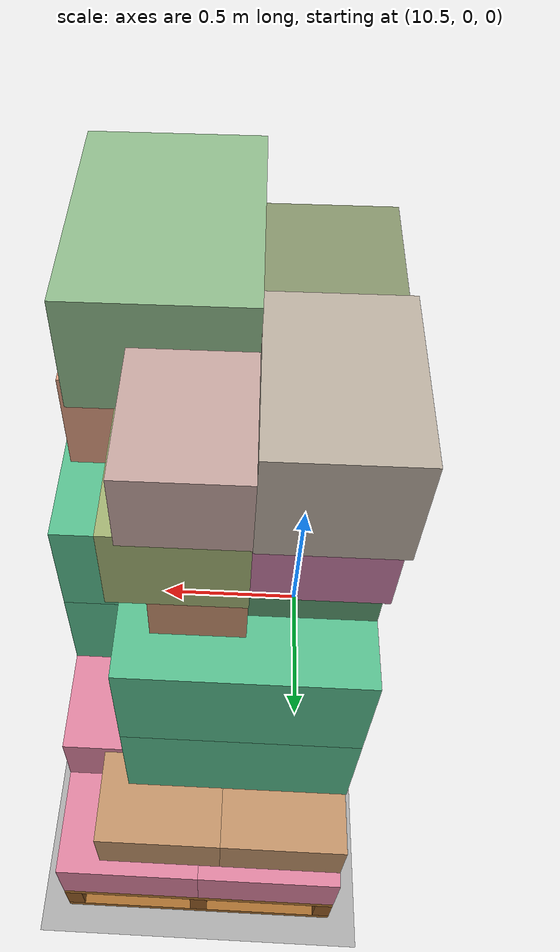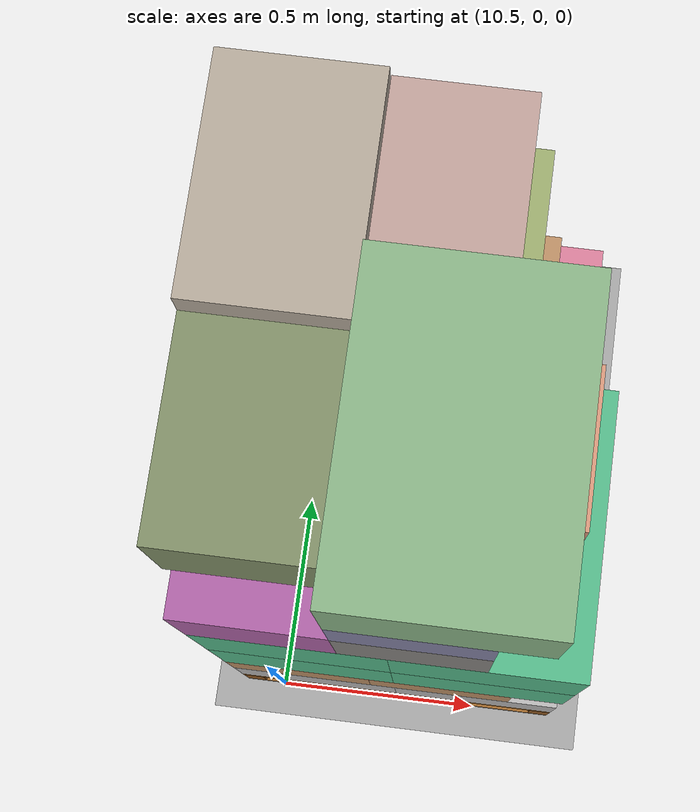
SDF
<sdf version="1.10">
 <world name="pallet_towers">
  <model name="ground_plane">
   <static>true</static>
   <link name="link">
    <collision name="collision">
     <geometry><plane><normal>0 0 1</normal><size>30 30</size></plane></geometry>
     <surface>
      <friction><ode><mu>0.55</mu><mu2>0.55</mu2></ode></friction>
      <bounce><restitution_coefficient>0</restitution_coefficient><threshold>100000</threshold></bounce>
      <contact><ode><kp>1000000</kp><kd>100</kd><max_vel>1</max_vel><min_depth>0.0005</min_depth></ode></contact>
     </surface>
    </collision>
    <visual name="visual">
     <geometry><plane><normal>0 0 1</normal><size>30 30</size></plane></geometry>
     <material><ambient>0.65 0.65 0.65 1</ambient><diffuse>0.65 0.65 0.65 1</diffuse></material>
    </visual>
   </link>
  </model>
  <model name="pallet_09_P09">
   <static>false</static>
   <pose>10.8 0.6 0.002 0 0 0</pose>
   <allow_auto_disable>false</allow_auto_disable>
   <link name="body">
    <inertial>
     <pose>0 0 0.072 0 0 0</pose>
     <mass>25</mass>
     <inertia>
      <ixx>3.07216082</ixx>
      <ixy>0</ixy>
      <ixz>0</ixz>
      <iyy>1.70896776</iyy>
      <iyz>0</iyz>
      <izz>4.63680694</izz>
     </inertia>
    </inertial>
    <collision name="bottom_deck_collision">
     <pose>0 0 0.011 0 0 0</pose>
     <geometry><box><size>0.8 1.2 0.022</size></box></geometry>
     <surface>
      <friction><ode><mu>0.55</mu><mu2>0.55</mu2></ode></friction>
      <bounce><restitution_coefficient>0</restitution_coefficient><threshold>100000</threshold></bounce>
      <contact><ode><kp>1000000</kp><kd>100</kd><max_vel>1</max_vel><min_depth>0.0005</min_depth></ode></contact>
     </surface>
    </collision>
    <visual name="bottom_deck_visual">
     <pose>0 0 0.011 0 0 0</pose>
     <geometry><box><size>0.8 1.2 0.022</size></box></geometry>
     <material>
      <ambient>0.46 0.28 0.10 1</ambient>
      <diffuse>0.64 0.42 0.18 1</diffuse>
      <specular>0.03 0.03 0.03 1</specular>
     </material>
    </visual>
    <collision name="left_stringer_collision">
     <pose>-0.375 0 0.072 0 0 0</pose>
     <geometry><box><size>0.05 1.2 0.1</size></box></geometry>
     <surface>
      <friction><ode><mu>0.55</mu><mu2>0.55</mu2></ode></friction>
      <bounce><restitution_coefficient>0</restitution_coefficient><threshold>100000</threshold></bounce>
      <contact><ode><kp>1000000</kp><kd>100</kd><max_vel>1</max_vel><min_depth>0.0005</min_depth></ode></contact>
     </surface>
    </collision>
    <visual name="left_stringer_visual">
     <pose>-0.375 0 0.072 0 0 0</pose>
     <geometry><box><size>0.05 1.2 0.1</size></box></geometry>
     <material>
      <ambient>0.42 0.25 0.09 1</ambient>
      <diffuse>0.58 0.36 0.14 1</diffuse>
      <specular>0.03 0.03 0.03 1</specular>
     </material>
    </visual>
    <collision name="centre_stringer_collision">
     <pose>0 0 0.072 0 0 0</pose>
     <geometry><box><size>0.05 1.2 0.1</size></box></geometry>
     <surface>
      <friction><ode><mu>0.55</mu><mu2>0.55</mu2></ode></friction>
      <bounce><restitution_coefficient>0</restitution_coefficient><threshold>100000</threshold></bounce>
      <contact><ode><kp>1000000</kp><kd>100</kd><max_vel>1</max_vel><min_depth>0.0005</min_depth></ode></contact>
     </surface>
    </collision>
    <visual name="centre_stringer_visual">
     <pose>0 0 0.072 0 0 0</pose>
     <geometry><box><size>0.05 1.2 0.1</size></box></geometry>
     <material>
      <ambient>0.42 0.25 0.09 1</ambient>
      <diffuse>0.58 0.36 0.14 1</diffuse>
      <specular>0.03 0.03 0.03 1</specular>
     </material>
    </visual>
    <collision name="right_stringer_collision">
     <pose>0.375 0 0.072 0 0 0</pose>
     <geometry><box><size>0.05 1.2 0.1</size></box></geometry>
     <surface>
      <friction><ode><mu>0.55</mu><mu2>0.55</mu2></ode></friction>
      <bounce><restitution_coefficient>0</restitution_coefficient><threshold>100000</threshold></bounce>
      <contact><ode><kp>1000000</kp><kd>100</kd><max_vel>1</max_vel><min_depth>0.0005</min_depth></ode></contact>
     </surface>
    </collision>
    <visual name="right_stringer_visual">
     <pose>0.375 0 0.072 0 0 0</pose>
     <geometry><box><size>0.05 1.2 0.1</size></box></geometry>
     <material>
      <ambient>0.42 0.25 0.09 1</ambient>
      <diffuse>0.58 0.36 0.14 1</diffuse>
      <specular>0.03 0.03 0.03 1</specular>
     </material>
    </visual>
    <collision name="top_deck_collision">
     <pose>0 0 0.133 0 0 0</pose>
     <geometry><box><size>0.8 1.2 0.022</size></box></geometry>
     <surface>
      <friction><ode><mu>0.55</mu><mu2>0.55</mu2></ode></friction>
      <bounce><restitution_coefficient>0</restitution_coefficient><threshold>100000</threshold></bounce>
      <contact><ode><kp>1000000</kp><kd>100</kd><max_vel>1</max_vel><min_depth>0.0005</min_depth></ode></contact>
     </surface>
    </collision>
    <visual name="top_deck_visual">
     <pose>0 0 0.133 0 0 0</pose>
     <geometry><box><size>0.8 1.2 0.022</size></box></geometry>
     <material>
      <ambient>0.50 0.31 0.11 1</ambient>
      <diffuse>0.70 0.47 0.20 1</diffuse>
      <specular>0.03 0.03 0.03 1</specular>
     </material>
    </visual>
   </link>
  </model>
  <model name="box_p09_0001_SOUP_003_SOUP">
   <static>false</static>
   <pose>10.6 0.15 0.241 0 0 0</pose>
   <link name="body">
    <inertial>
     <mass>12</mass>
     <inertia><ixx>0.1261</ixx><ixy>0</ixy><ixz>0</ixz><iyy>0.1961</iyy><iyz>0</iyz><izz>0.25</izz></inertia>
    </inertial>
    <collision name="collision">
     <geometry><box><size>0.4 0.3 0.19</size></box></geometry>
     <surface>
      <friction><ode><mu>0.55</mu><mu2>0.55</mu2></ode></friction>
      <bounce><restitution_coefficient>0</restitution_coefficient><threshold>100000</threshold></bounce>
      <contact><ode><kp>1000000</kp><kd>100</kd><max_vel>1</max_vel><min_depth>0.0005</min_depth></ode></contact>
     </surface>
    </collision>
    <visual name="visual">
     <geometry><box><size>0.4 0.3 0.19</size></box></geometry>
     <material>
      <ambient>0.721568627 0.717647059 0.717647059 1</ambient>
      <diffuse>0.721568627 0.717647059 0.717647059 1</diffuse>
      <specular>0.05 0.05 0.05 1</specular>
     </material>
    </visual>
   </link>
  </model>
  <model name="box_p09_0002_SOUP_004_SOUP">
   <static>false</static>
   <pose>11 0.15 0.241 0 0 0</pose>
   <link name="body">
    <inertial>
     <mass>12</mass>
     <inertia><ixx>0.1261</ixx><ixy>0</ixy><ixz>0</ixz><iyy>0.1961</iyy><iyz>0</iyz><izz>0.25</izz></inertia>
    </inertial>
    <collision name="collision">
     <geometry><box><size>0.4 0.3 0.19</size></box></geometry>
     <surface>
      <friction><ode><mu>0.55</mu><mu2>0.55</mu2></ode></friction>
      <bounce><restitution_coefficient>0</restitution_coefficient><threshold>100000</threshold></bounce>
      <contact><ode><kp>1000000</kp><kd>100</kd><max_vel>1</max_vel><min_depth>0.0005</min_depth></ode></contact>
     </surface>
    </collision>
    <visual name="visual">
     <geometry><box><size>0.4 0.3 0.19</size></box></geometry>
     <material>
      <ambient>0.721568627 0.717647059 0.717647059 1</ambient>
      <diffuse>0.721568627 0.717647059 0.717647059 1</diffuse>
      <specular>0.05 0.05 0.05 1</specular>
     </material>
    </visual>
   </link>
  </model>
  <model name="box_p09_0003_SOUP_005_SOUP">
   <static>false</static>
   <pose>10.6 0.45 0.241 0 0 0</pose>
   <link name="body">
    <inertial>
     <mass>12</mass>
     <inertia><ixx>0.1261</ixx><ixy>0</ixy><ixz>0</ixz><iyy>0.1961</iyy><iyz>0</iyz><izz>0.25</izz></inertia>
    </inertial>
    <collision name="collision">
     <geometry><box><size>0.4 0.3 0.19</size></box></geometry>
     <surface>
      <friction><ode><mu>0.55</mu><mu2>0.55</mu2></ode></friction>
      <bounce><restitution_coefficient>0</restitution_coefficient><threshold>100000</threshold></bounce>
      <contact><ode><kp>1000000</kp><kd>100</kd><max_vel>1</max_vel><min_depth>0.0005</min_depth></ode></contact>
     </surface>
    </collision>
    <visual name="visual">
     <geometry><box><size>0.4 0.3 0.19</size></box></geometry>
     <material>
      <ambient>0.721568627 0.717647059 0.717647059 1</ambient>
      <diffuse>0.721568627 0.717647059 0.717647059 1</diffuse>
      <specular>0.05 0.05 0.05 1</specular>
     </material>
    </visual>
   </link>
  </model>
  <model name="box_p09_0004_SOUP_006_SOUP">
   <static>false</static>
   <pose>11 0.45 0.241 0 0 0</pose>
   <link name="body">
    <inertial>
     <mass>12</mass>
     <inertia><ixx>0.1261</ixx><ixy>0</ixy><ixz>0</ixz><iyy>0.1961</iyy><iyz>0</iyz><izz>0.25</izz></inertia>
    </inertial>
    <collision name="collision">
     <geometry><box><size>0.4 0.3 0.19</size></box></geometry>
     <surface>
      <friction><ode><mu>0.55</mu><mu2>0.55</mu2></ode></friction>
      <bounce><restitution_coefficient>0</restitution_coefficient><threshold>100000</threshold></bounce>
      <contact><ode><kp>1000000</kp><kd>100</kd><max_vel>1</max_vel><min_depth>0.0005</min_depth></ode></contact>
     </surface>
    </collision>
    <visual name="visual">
     <geometry><box><size>0.4 0.3 0.19</size></box></geometry>
     <material>
      <ambient>0.721568627 0.717647059 0.717647059 1</ambient>
      <diffuse>0.721568627 0.717647059 0.717647059 1</diffuse>
      <specular>0.05 0.05 0.05 1</specular>
     </material>
    </visual>
   </link>
  </model>
  <model name="box_p09_0005_BEANS_001_BEANS">
   <static>false</static>
   <pose>10.6 0.75 0.236 0 0 0</pose>
   <link name="body">
    <inertial>
     <mass>11</mass>
     <inertia>
      <ixx>0.1122</ixx>
      <ixy>0</ixy>
      <ixz>0</ixz>
      <iyy>0.176366667</iyy>
      <iyz>0</iyz>
      <izz>0.229166667</izz>
     </inertia>
    </inertial>
    <collision name="collision">
     <geometry><box><size>0.4 0.3 0.18</size></box></geometry>
     <surface>
      <friction><ode><mu>0.55</mu><mu2>0.55</mu2></ode></friction>
      <bounce><restitution_coefficient>0</restitution_coefficient><threshold>100000</threshold></bounce>
      <contact><ode><kp>1000000</kp><kd>100</kd><max_vel>1</max_vel><min_depth>0.0005</min_depth></ode></contact>
     </surface>
    </collision>
    <visual name="visual">
     <geometry><box><size>0.4 0.3 0.18</size></box></geometry>
     <material>
      <ambient>0.847058824 0.498039216 0.607843137 1</ambient>
      <diffuse>0.847058824 0.498039216 0.607843137 1</diffuse>
      <specular>0.05 0.05 0.05 1</specular>
     </material>
    </visual>
   </link>
  </model>
  <model name="box_p09_0006_BEANS_002_BEANS">
   <static>false</static>
   <pose>11 0.75 0.236 0 0 0</pose>
   <link name="body">
    <inertial>
     <mass>11</mass>
     <inertia>
      <ixx>0.1122</ixx>
      <ixy>0</ixy>
      <ixz>0</ixz>
      <iyy>0.176366667</iyy>
      <iyz>0</iyz>
      <izz>0.229166667</izz>
     </inertia>
    </inertial>
    <collision name="collision">
     <geometry><box><size>0.4 0.3 0.18</size></box></geometry>
     <surface>
      <friction><ode><mu>0.55</mu><mu2>0.55</mu2></ode></friction>
      <bounce><restitution_coefficient>0</restitution_coefficient><threshold>100000</threshold></bounce>
      <contact><ode><kp>1000000</kp><kd>100</kd><max_vel>1</max_vel><min_depth>0.0005</min_depth></ode></contact>
     </surface>
    </collision>
    <visual name="visual">
     <geometry><box><size>0.4 0.3 0.18</size></box></geometry>
     <material>
      <ambient>0.847058824 0.498039216 0.607843137 1</ambient>
      <diffuse>0.847058824 0.498039216 0.607843137 1</diffuse>
      <specular>0.05 0.05 0.05 1</specular>
     </material>
    </visual>
   </link>
  </model>
  <model name="box_p09_0007_BEANS_003_BEANS">
   <static>false</static>
   <pose>10.6 1.05 0.236 0 0 0</pose>
   <link name="body">
    <inertial>
     <mass>11</mass>
     <inertia>
      <ixx>0.1122</ixx>
      <ixy>0</ixy>
      <ixz>0</ixz>
      <iyy>0.176366667</iyy>
      <iyz>0</iyz>
      <izz>0.229166667</izz>
     </inertia>
    </inertial>
    <collision name="collision">
     <geometry><box><size>0.4 0.3 0.18</size></box></geometry>
     <surface>
      <friction><ode><mu>0.55</mu><mu2>0.55</mu2></ode></friction>
      <bounce><restitution_coefficient>0</restitution_coefficient><threshold>100000</threshold></bounce>
      <contact><ode><kp>1000000</kp><kd>100</kd><max_vel>1</max_vel><min_depth>0.0005</min_depth></ode></contact>
     </surface>
    </collision>
    <visual name="visual">
     <geometry><box><size>0.4 0.3 0.18</size></box></geometry>
     <material>
      <ambient>0.847058824 0.498039216 0.607843137 1</ambient>
      <diffuse>0.847058824 0.498039216 0.607843137 1</diffuse>
      <specular>0.05 0.05 0.05 1</specular>
     </material>
    </visual>
   </link>
  </model>
  <model name="box_p09_0008_BEANS_004_BEANS">
   <static>false</static>
   <pose>11 1.05 0.236 0 0 0</pose>
   <link name="body">
    <inertial>
     <mass>11</mass>
     <inertia>
      <ixx>0.1122</ixx>
      <ixy>0</ixy>
      <ixz>0</ixz>
      <iyy>0.176366667</iyy>
      <iyz>0</iyz>
      <izz>0.229166667</izz>
     </inertia>
    </inertial>
    <collision name="collision">
     <geometry><box><size>0.4 0.3 0.18</size></box></geometry>
     <surface>
      <friction><ode><mu>0.55</mu><mu2>0.55</mu2></ode></friction>
      <bounce><restitution_coefficient>0</restitution_coefficient><threshold>100000</threshold></bounce>
      <contact><ode><kp>1000000</kp><kd>100</kd><max_vel>1</max_vel><min_depth>0.0005</min_depth></ode></contact>
     </surface>
    </collision>
    <visual name="visual">
     <geometry><box><size>0.4 0.3 0.18</size></box></geometry>
     <material>
      <ambient>0.847058824 0.498039216 0.607843137 1</ambient>
      <diffuse>0.847058824 0.498039216 0.607843137 1</diffuse>
      <specular>0.05 0.05 0.05 1</specular>
     </material>
    </visual>
   </link>
  </model>
  <model name="box_p09_0009_BEANS_005_BEANS">
   <static>false</static>
   <pose>10.6 0.75 0.416 0 0 0</pose>
   <link name="body">
    <inertial>
     <mass>11</mass>
     <inertia>
      <ixx>0.1122</ixx>
      <ixy>0</ixy>
      <ixz>0</ixz>
      <iyy>0.176366667</iyy>
      <iyz>0</iyz>
      <izz>0.229166667</izz>
     </inertia>
    </inertial>
    <collision name="collision">
     <geometry><box><size>0.4 0.3 0.18</size></box></geometry>
     <surface>
      <friction><ode><mu>0.55</mu><mu2>0.55</mu2></ode></friction>
      <bounce><restitution_coefficient>0</restitution_coefficient><threshold>100000</threshold></bounce>
      <contact><ode><kp>1000000</kp><kd>100</kd><max_vel>1</max_vel><min_depth>0.0005</min_depth></ode></contact>
     </surface>
    </collision>
    <visual name="visual">
     <geometry><box><size>0.4 0.3 0.18</size></box></geometry>
     <material>
      <ambient>0.847058824 0.498039216 0.607843137 1</ambient>
      <diffuse>0.847058824 0.498039216 0.607843137 1</diffuse>
      <specular>0.05 0.05 0.05 1</specular>
     </material>
    </visual>
   </link>
  </model>
  <model name="box_p09_0010_BEANS_006_BEANS">
   <static>false</static>
   <pose>11 0.75 0.416 0 0 0</pose>
   <link name="body">
    <inertial>
     <mass>11</mass>
     <inertia>
      <ixx>0.1122</ixx>
      <ixy>0</ixy>
      <ixz>0</ixz>
      <iyy>0.176366667</iyy>
      <iyz>0</iyz>
      <izz>0.229166667</izz>
     </inertia>
    </inertial>
    <collision name="collision">
     <geometry><box><size>0.4 0.3 0.18</size></box></geometry>
     <surface>
      <friction><ode><mu>0.55</mu><mu2>0.55</mu2></ode></friction>
      <bounce><restitution_coefficient>0</restitution_coefficient><threshold>100000</threshold></bounce>
      <contact><ode><kp>1000000</kp><kd>100</kd><max_vel>1</max_vel><min_depth>0.0005</min_depth></ode></contact>
     </surface>
    </collision>
    <visual name="visual">
     <geometry><box><size>0.4 0.3 0.18</size></box></geometry>
     <material>
      <ambient>0.847058824 0.498039216 0.607843137 1</ambient>
      <diffuse>0.847058824 0.498039216 0.607843137 1</diffuse>
      <specular>0.05 0.05 0.05 1</specular>
     </material>
    </visual>
   </link>
  </model>
  <model name="box_p09_0011_TUNA_001_TUNA">
   <static>false</static>
   <pose>10.57 1.03 0.406 0 0 0</pose>
   <link name="body">
    <inertial>
     <mass>10</mass>
     <inertia>
      <ixx>0.0776666667</ixx>
      <ixy>0</ixy>
      <ixz>0</ixz>
      <iyy>0.117666667</iyy>
      <iyz>0</iyz>
      <izz>0.152666667</izz>
     </inertia>
    </inertial>
    <collision name="collision">
     <geometry><box><size>0.34 0.26 0.16</size></box></geometry>
     <surface>
      <friction><ode><mu>0.55</mu><mu2>0.55</mu2></ode></friction>
      <bounce><restitution_coefficient>0</restitution_coefficient><threshold>100000</threshold></bounce>
      <contact><ode><kp>1000000</kp><kd>100</kd><max_vel>1</max_vel><min_depth>0.0005</min_depth></ode></contact>
     </surface>
    </collision>
    <visual name="visual">
     <geometry><box><size>0.34 0.26 0.16</size></box></geometry>
     <material>
      <ambient>0.737254902 0.560784314 0.4 1</ambient>
      <diffuse>0.737254902 0.560784314 0.4 1</diffuse>
      <specular>0.05 0.05 0.05 1</specular>
     </material>
    </visual>
   </link>
  </model>
  <model name="box_p09_0012_TUNA_002_TUNA">
   <static>false</static>
   <pose>10.91 1.03 0.406 0 0 0</pose>
   <link name="body">
    <inertial>
     <mass>10</mass>
     <inertia>
      <ixx>0.0776666667</ixx>
      <ixy>0</ixy>
      <ixz>0</ixz>
      <iyy>0.117666667</iyy>
      <iyz>0</iyz>
      <izz>0.152666667</izz>
     </inertia>
    </inertial>
    <collision name="collision">
     <geometry><box><size>0.34 0.26 0.16</size></box></geometry>
     <surface>
      <friction><ode><mu>0.55</mu><mu2>0.55</mu2></ode></friction>
      <bounce><restitution_coefficient>0</restitution_coefficient><threshold>100000</threshold></bounce>
      <contact><ode><kp>1000000</kp><kd>100</kd><max_vel>1</max_vel><min_depth>0.0005</min_depth></ode></contact>
     </surface>
    </collision>
    <visual name="visual">
     <geometry><box><size>0.34 0.26 0.16</size></box></geometry>
     <material>
      <ambient>0.737254902 0.560784314 0.4 1</ambient>
      <diffuse>0.737254902 0.560784314 0.4 1</diffuse>
      <specular>0.05 0.05 0.05 1</specular>
     </material>
    </visual>
   </link>
  </model>
  <model name="box_p09_0013_TUNA_003_TUNA">
   <static>false</static>
   <pose>10.57 0.13 0.416 0 0 0</pose>
   <link name="body">
    <inertial>
     <mass>10</mass>
     <inertia>
      <ixx>0.0776666667</ixx>
      <ixy>0</ixy>
      <ixz>0</ixz>
      <iyy>0.117666667</iyy>
      <iyz>0</iyz>
      <izz>0.152666667</izz>
     </inertia>
    </inertial>
    <collision name="collision">
     <geometry><box><size>0.34 0.26 0.16</size></box></geometry>
     <surface>
      <friction><ode><mu>0.55</mu><mu2>0.55</mu2></ode></friction>
      <bounce><restitution_coefficient>0</restitution_coefficient><threshold>100000</threshold></bounce>
      <contact><ode><kp>1000000</kp><kd>100</kd><max_vel>1</max_vel><min_depth>0.0005</min_depth></ode></contact>
     </surface>
    </collision>
    <visual name="visual">
     <geometry><box><size>0.34 0.26 0.16</size></box></geometry>
     <material>
      <ambient>0.737254902 0.560784314 0.4 1</ambient>
      <diffuse>0.737254902 0.560784314 0.4 1</diffuse>
      <specular>0.05 0.05 0.05 1</specular>
     </material>
    </visual>
   </link>
  </model>
  <model name="box_p09_0014_TUNA_004_TUNA">
   <static>false</static>
   <pose>10.53 0.43 0.416 0 0 0</pose>
   <link name="body">
    <inertial>
     <mass>10</mass>
     <inertia>
      <ixx>0.117666667</ixx>
      <ixy>0</ixy>
      <ixz>0</ixz>
      <iyy>0.0776666667</iyy>
      <iyz>0</iyz>
      <izz>0.152666667</izz>
     </inertia>
    </inertial>
    <collision name="collision">
     <geometry><box><size>0.26 0.34 0.16</size></box></geometry>
     <surface>
      <friction><ode><mu>0.55</mu><mu2>0.55</mu2></ode></friction>
      <bounce><restitution_coefficient>0</restitution_coefficient><threshold>100000</threshold></bounce>
      <contact><ode><kp>1000000</kp><kd>100</kd><max_vel>1</max_vel><min_depth>0.0005</min_depth></ode></contact>
     </surface>
    </collision>
    <visual name="visual">
     <geometry><box><size>0.26 0.34 0.16</size></box></geometry>
     <material>
      <ambient>0.737254902 0.560784314 0.4 1</ambient>
      <diffuse>0.737254902 0.560784314 0.4 1</diffuse>
      <specular>0.05 0.05 0.05 1</specular>
     </material>
    </visual>
   </link>
  </model>
  <model name="box_p09_0015_TUNA_005_TUNA">
   <static>false</static>
   <pose>10.79 0.43 0.416 0 0 0</pose>
   <link name="body">
    <inertial>
     <mass>10</mass>
     <inertia>
      <ixx>0.117666667</ixx>
      <ixy>0</ixy>
      <ixz>0</ixz>
      <iyy>0.0776666667</iyy>
      <iyz>0</iyz>
      <izz>0.152666667</izz>
     </inertia>
    </inertial>
    <collision name="collision">
     <geometry><box><size>0.26 0.34 0.16</size></box></geometry>
     <surface>
      <friction><ode><mu>0.55</mu><mu2>0.55</mu2></ode></friction>
      <bounce><restitution_coefficient>0</restitution_coefficient><threshold>100000</threshold></bounce>
      <contact><ode><kp>1000000</kp><kd>100</kd><max_vel>1</max_vel><min_depth>0.0005</min_depth></ode></contact>
     </surface>
    </collision>
    <visual name="visual">
     <geometry><box><size>0.26 0.34 0.16</size></box></geometry>
     <material>
      <ambient>0.737254902 0.560784314 0.4 1</ambient>
      <diffuse>0.737254902 0.560784314 0.4 1</diffuse>
      <specular>0.05 0.05 0.05 1</specular>
     </material>
    </visual>
   </link>
  </model>
  <model name="box_p09_0016_TUNA_006_TUNA">
   <static>false</static>
   <pose>10.91 0.13 0.416 0 0 0</pose>
   <link name="body">
    <inertial>
     <mass>10</mass>
     <inertia>
      <ixx>0.0776666667</ixx>
      <ixy>0</ixy>
      <ixz>0</ixz>
      <iyy>0.117666667</iyy>
      <iyz>0</iyz>
      <izz>0.152666667</izz>
     </inertia>
    </inertial>
    <collision name="collision">
     <geometry><box><size>0.34 0.26 0.16</size></box></geometry>
     <surface>
      <friction><ode><mu>0.55</mu><mu2>0.55</mu2></ode></friction>
      <bounce><restitution_coefficient>0</restitution_coefficient><threshold>100000</threshold></bounce>
      <contact><ode><kp>1000000</kp><kd>100</kd><max_vel>1</max_vel><min_depth>0.0005</min_depth></ode></contact>
     </surface>
    </collision>
    <visual name="visual">
     <geometry><box><size>0.34 0.26 0.16</size></box></geometry>
     <material>
      <ambient>0.737254902 0.560784314 0.4 1</ambient>
      <diffuse>0.737254902 0.560784314 0.4 1</diffuse>
      <specular>0.05 0.05 0.05 1</specular>
     </material>
    </visual>
   </link>
  </model>
  <model name="box_p09_0017_PAPER_001_PAPER">
   <static>false</static>
   <pose>10.6 0.3 0.646 0 0 0</pose>
   <link name="body">
    <inertial>
     <mass>5.5</mass>
     <inertia>
      <ixx>0.20625</ixx>
      <ixy>0</ixy>
      <ixz>0</ixz>
      <iyy>0.114583333</iyy>
      <iyz>0</iyz>
      <izz>0.238333333</izz>
     </inertia>
    </inertial>
    <collision name="collision">
     <geometry><box><size>0.4 0.6 0.3</size></box></geometry>
     <surface>
      <friction><ode><mu>0.55</mu><mu2>0.55</mu2></ode></friction>
      <bounce><restitution_coefficient>0</restitution_coefficient><threshold>100000</threshold></bounce>
      <contact><ode><kp>1000000</kp><kd>100</kd><max_vel>1</max_vel><min_depth>0.0005</min_depth></ode></contact>
     </surface>
    </collision>
    <visual name="visual">
     <geometry><box><size>0.4 0.6 0.3</size></box></geometry>
     <material>
      <ambient>0.333333333 0.725490196 0.541176471 1</ambient>
      <diffuse>0.333333333 0.725490196 0.541176471 1</diffuse>
      <specular>0.05 0.05 0.05 1</specular>
     </material>
    </visual>
   </link>
  </model>
  <model name="box_p09_0018_PAPER_002_PAPER">
   <static>false</static>
   <pose>11 0.3 0.646 0 0 0</pose>
   <link name="body">
    <inertial>
     <mass>5.5</mass>
     <inertia>
      <ixx>0.20625</ixx>
      <ixy>0</ixy>
      <ixz>0</ixz>
      <iyy>0.114583333</iyy>
      <iyz>0</iyz>
      <izz>0.238333333</izz>
     </inertia>
    </inertial>
    <collision name="collision">
     <geometry><box><size>0.4 0.6 0.3</size></box></geometry>
     <surface>
      <friction><ode><mu>0.55</mu><mu2>0.55</mu2></ode></friction>
      <bounce><restitution_coefficient>0</restitution_coefficient><threshold>100000</threshold></bounce>
      <contact><ode><kp>1000000</kp><kd>100</kd><max_vel>1</max_vel><min_depth>0.0005</min_depth></ode></contact>
     </surface>
    </collision>
    <visual name="visual">
     <geometry><box><size>0.4 0.6 0.3</size></box></geometry>
     <material>
      <ambient>0.333333333 0.725490196 0.541176471 1</ambient>
      <diffuse>0.333333333 0.725490196 0.541176471 1</diffuse>
      <specular>0.05 0.05 0.05 1</specular>
     </material>
    </visual>
   </link>
  </model>
  <model name="box_p09_0019_PAPER_003_PAPER">
   <static>false</static>
   <pose>10.7 0.8 0.656 0 0 0</pose>
   <link name="body">
    <inertial>
     <mass>5.5</mass>
     <inertia>
      <ixx>0.114583333</ixx>
      <ixy>0</ixy>
      <ixz>0</ixz>
      <iyy>0.20625</iyy>
      <iyz>0</iyz>
      <izz>0.238333333</izz>
     </inertia>
    </inertial>
    <collision name="collision">
     <geometry><box><size>0.6 0.4 0.3</size></box></geometry>
     <surface>
      <friction><ode><mu>0.55</mu><mu2>0.55</mu2></ode></friction>
      <bounce><restitution_coefficient>0</restitution_coefficient><threshold>100000</threshold></bounce>
      <contact><ode><kp>1000000</kp><kd>100</kd><max_vel>1</max_vel><min_depth>0.0005</min_depth></ode></contact>
     </surface>
    </collision>
    <visual name="visual">
     <geometry><box><size>0.6 0.4 0.3</size></box></geometry>
     <material>
      <ambient>0.333333333 0.725490196 0.541176471 1</ambient>
      <diffuse>0.333333333 0.725490196 0.541176471 1</diffuse>
      <specular>0.05 0.05 0.05 1</specular>
     </material>
    </visual>
   </link>
  </model>
  <model name="box_p09_0020_PAPER_004_PAPER">
   <static>false</static>
   <pose>10.6 0.3 0.946 0 0 0</pose>
   <link name="body">
    <inertial>
     <mass>5.5</mass>
     <inertia>
      <ixx>0.20625</ixx>
      <ixy>0</ixy>
      <ixz>0</ixz>
      <iyy>0.114583333</iyy>
      <iyz>0</iyz>
      <izz>0.238333333</izz>
     </inertia>
    </inertial>
    <collision name="collision">
     <geometry><box><size>0.4 0.6 0.3</size></box></geometry>
     <surface>
      <friction><ode><mu>0.55</mu><mu2>0.55</mu2></ode></friction>
      <bounce><restitution_coefficient>0</restitution_coefficient><threshold>100000</threshold></bounce>
      <contact><ode><kp>1000000</kp><kd>100</kd><max_vel>1</max_vel><min_depth>0.0005</min_depth></ode></contact>
     </surface>
    </collision>
    <visual name="visual">
     <geometry><box><size>0.4 0.6 0.3</size></box></geometry>
     <material>
      <ambient>0.333333333 0.725490196 0.541176471 1</ambient>
      <diffuse>0.333333333 0.725490196 0.541176471 1</diffuse>
      <specular>0.05 0.05 0.05 1</specular>
     </material>
    </visual>
   </link>
  </model>
  <model name="box_p09_0021_PAPER_005_PAPER">
   <static>false</static>
   <pose>11 0.3 0.946 0 0 0</pose>
   <link name="body">
    <inertial>
     <mass>5.5</mass>
     <inertia>
      <ixx>0.20625</ixx>
      <ixy>0</ixy>
      <ixz>0</ixz>
      <iyy>0.114583333</iyy>
      <iyz>0</iyz>
      <izz>0.238333333</izz>
     </inertia>
    </inertial>
    <collision name="collision">
     <geometry><box><size>0.4 0.6 0.3</size></box></geometry>
     <surface>
      <friction><ode><mu>0.55</mu><mu2>0.55</mu2></ode></friction>
      <bounce><restitution_coefficient>0</restitution_coefficient><threshold>100000</threshold></bounce>
      <contact><ode><kp>1000000</kp><kd>100</kd><max_vel>1</max_vel><min_depth>0.0005</min_depth></ode></contact>
     </surface>
    </collision>
    <visual name="visual">
     <geometry><box><size>0.4 0.6 0.3</size></box></geometry>
     <material>
      <ambient>0.333333333 0.725490196 0.541176471 1</ambient>
      <diffuse>0.333333333 0.725490196 0.541176471 1</diffuse>
      <specular>0.05 0.05 0.05 1</specular>
     </material>
    </visual>
   </link>
  </model>
  <model name="box_p09_0022_PAPER_006_PAPER">
   <static>false</static>
   <pose>10.7 0.8 0.956 0 0 0</pose>
   <link name="body">
    <inertial>
     <mass>5.5</mass>
     <inertia>
      <ixx>0.114583333</ixx>
      <ixy>0</ixy>
      <ixz>0</ixz>
      <iyy>0.20625</iyy>
      <iyz>0</iyz>
      <izz>0.238333333</izz>
     </inertia>
    </inertial>
    <collision name="collision">
     <geometry><box><size>0.6 0.4 0.3</size></box></geometry>
     <surface>
      <friction><ode><mu>0.55</mu><mu2>0.55</mu2></ode></friction>
      <bounce><restitution_coefficient>0</restitution_coefficient><threshold>100000</threshold></bounce>
      <contact><ode><kp>1000000</kp><kd>100</kd><max_vel>1</max_vel><min_depth>0.0005</min_depth></ode></contact>
     </surface>
    </collision>
    <visual name="visual">
     <geometry><box><size>0.6 0.4 0.3</size></box></geometry>
     <material>
      <ambient>0.333333333 0.725490196 0.541176471 1</ambient>
      <diffuse>0.333333333 0.725490196 0.541176471 1</diffuse>
      <specular>0.05 0.05 0.05 1</specular>
     </material>
    </visual>
   </link>
  </model>
  <model name="box_p09_0023_OLIVEOIL_001_OLIVEOIL">
   <static>false</static>
   <pose>10.55 0.11 1.226 0 0 0</pose>
   <link name="body">
    <inertial>
     <mass>9</mass>
     <inertia><ixx>0.087</ixx><ixy>0</ixy><ixz>0</ixz><iyy>0.1182</iyy><iyz>0</iyz><izz>0.1038</izz></inertia>
    </inertial>
    <collision name="collision">
     <geometry><box><size>0.3 0.22 0.26</size></box></geometry>
     <surface>
      <friction><ode><mu>0.55</mu><mu2>0.55</mu2></ode></friction>
      <bounce><restitution_coefficient>0</restitution_coefficient><threshold>100000</threshold></bounce>
      <contact><ode><kp>1000000</kp><kd>100</kd><max_vel>1</max_vel><min_depth>0.0005</min_depth></ode></contact>
     </surface>
    </collision>
    <visual name="visual">
     <geometry><box><size>0.3 0.22 0.26</size></box></geometry>
     <material>
      <ambient>0.682352941 0.384313725 0.650980392 1</ambient>
      <diffuse>0.682352941 0.384313725 0.650980392 1</diffuse>
      <specular>0.05 0.05 0.05 1</specular>
     </material>
    </visual>
   </link>
  </model>
  <model name="box_p09_0024_VINEGAR_001_VINEGAR">
   <static>false</static>
   <pose>10.85 0.11 1.221 0 0 0</pose>
   <link name="body">
    <inertial>
     <mass>8</mass>
     <inertia>
      <ixx>0.0739333333</ixx>
      <ixy>0</ixy>
      <ixz>0</ixz>
      <iyy>0.101666667</iyy>
      <iyz>0</iyz>
      <izz>0.0922666667</izz>
     </inertia>
    </inertial>
    <collision name="collision">
     <geometry><box><size>0.3 0.22 0.25</size></box></geometry>
     <surface>
      <friction><ode><mu>0.55</mu><mu2>0.55</mu2></ode></friction>
      <bounce><restitution_coefficient>0</restitution_coefficient><threshold>100000</threshold></bounce>
      <contact><ode><kp>1000000</kp><kd>100</kd><max_vel>1</max_vel><min_depth>0.0005</min_depth></ode></contact>
     </surface>
    </collision>
    <visual name="visual">
     <geometry><box><size>0.3 0.22 0.25</size></box></geometry>
     <material>
      <ambient>0.529411765 0.517647059 0.505882353 1</ambient>
      <diffuse>0.529411765 0.517647059 0.505882353 1</diffuse>
      <specular>0.05 0.05 0.05 1</specular>
     </material>
    </visual>
   </link>
  </model>
  <model name="box_p09_0025_MAYO_001_MAYO">
   <static>false</static>
   <pose>10.58 0.34 1.181 0 0 0</pose>
   <link name="body">
    <inertial>
     <mass>7</mass>
     <inertia>
      <ixx>0.0504583333</ixx>
      <ixy>0</ixy>
      <ixz>0</ixz>
      <iyy>0.0924583333</iyy>
      <iyz>0</iyz>
      <izz>0.1092</izz>
     </inertia>
    </inertial>
    <collision name="collision">
     <geometry><box><size>0.36 0.24 0.17</size></box></geometry>
     <surface>
      <friction><ode><mu>0.55</mu><mu2>0.55</mu2></ode></friction>
      <bounce><restitution_coefficient>0</restitution_coefficient><threshold>100000</threshold></bounce>
      <contact><ode><kp>1000000</kp><kd>100</kd><max_vel>1</max_vel><min_depth>0.0005</min_depth></ode></contact>
     </surface>
    </collision>
    <visual name="visual">
     <geometry><box><size>0.36 0.24 0.17</size></box></geometry>
     <material>
      <ambient>0.4 0.541176471 0.631372549 1</ambient>
      <diffuse>0.4 0.541176471 0.631372549 1</diffuse>
      <specular>0.05 0.05 0.05 1</specular>
     </material>
    </visual>
   </link>
  </model>
  <model name="box_p09_0026_KETCHUP_001_KETCHUP">
   <static>false</static>
   <pose>10.88 0.4 1.186 0 0 0</pose>
   <link name="body">
    <inertial>
     <mass>8.5</mass>
     <inertia><ixx>0.11475</ixx><ixy>0</ixy><ixz>0</ixz><iyy>0.06375</iyy><iyz>0</iyz><izz>0.1326</izz></inertia>
    </inertial>
    <collision name="collision">
     <geometry><box><size>0.24 0.36 0.18</size></box></geometry>
     <surface>
      <friction><ode><mu>0.55</mu><mu2>0.55</mu2></ode></friction>
      <bounce><restitution_coefficient>0</restitution_coefficient><threshold>100000</threshold></bounce>
      <contact><ode><kp>1000000</kp><kd>100</kd><max_vel>1</max_vel><min_depth>0.0005</min_depth></ode></contact>
     </surface>
    </collision>
    <visual name="visual">
     <geometry><box><size>0.24 0.36 0.18</size></box></geometry>
     <material>
      <ambient>0.6 0.650980392 0.596078431 1</ambient>
      <diffuse>0.6 0.650980392 0.596078431 1</diffuse>
      <specular>0.05 0.05 0.05 1</specular>
     </material>
    </visual>
   </link>
  </model>
  <model name="box_p09_0027_SPICES_001_SPICES">
   <static>false</static>
   <pose>10.55 0.71 1.186 0 0 0</pose>
   <link name="body">
    <inertial>
     <mass>4</mass>
     <inertia>
      <ixx>0.0246666667</ixx>
      <ixy>0</ixy>
      <ixz>0</ixz>
      <iyy>0.0385333333</iyy>
      <iyz>0</iyz>
      <izz>0.0461333333</izz>
     </inertia>
    </inertial>
    <collision name="collision">
     <geometry><box><size>0.3 0.22 0.16</size></box></geometry>
     <surface>
      <friction><ode><mu>0.55</mu><mu2>0.55</mu2></ode></friction>
      <bounce><restitution_coefficient>0</restitution_coefficient><threshold>100000</threshold></bounce>
      <contact><ode><kp>1000000</kp><kd>100</kd><max_vel>1</max_vel><min_depth>0.0005</min_depth></ode></contact>
     </surface>
    </collision>
    <visual name="visual">
     <geometry><box><size>0.3 0.22 0.16</size></box></geometry>
     <material>
      <ambient>0.341176471 0.584313725 0.411764706 1</ambient>
      <diffuse>0.341176471 0.584313725 0.411764706 1</diffuse>
      <specular>0.05 0.05 0.05 1</specular>
     </material>
    </visual>
   </link>
  </model>
  <model name="box_p09_0028_NUTS_001_NUTS">
   <static>false</static>
   <pose>10.81 0.73 1.196 0 0 0</pose>
   <link name="body">
    <inertial>
     <mass>5.5</mass>
     <inertia>
      <ixx>0.0561</ixx>
      <ixy>0</ixy>
      <ixz>0</ixz>
      <iyy>0.0370333333</iyy>
      <iyz>0</iyz>
      <izz>0.0634333333</izz>
     </inertia>
    </inertial>
    <collision name="collision">
     <geometry><box><size>0.22 0.3 0.18</size></box></geometry>
     <surface>
      <friction><ode><mu>0.55</mu><mu2>0.55</mu2></ode></friction>
      <bounce><restitution_coefficient>0</restitution_coefficient><threshold>100000</threshold></bounce>
      <contact><ode><kp>1000000</kp><kd>100</kd><max_vel>1</max_vel><min_depth>0.0005</min_depth></ode></contact>
     </surface>
    </collision>
    <visual name="visual">
     <geometry><box><size>0.22 0.3 0.18</size></box></geometry>
     <material>
      <ambient>0.756862745 0.545098039 0.411764706 1</ambient>
      <diffuse>0.756862745 0.545098039 0.411764706 1</diffuse>
      <specular>0.05 0.05 0.05 1</specular>
     </material>
    </visual>
   </link>
  </model>
  <model name="box_p09_0029_JAM_001_JAM">
   <static>false</static>
   <pose>10.565 0.35 1.351 0 0 0</pose>
   <link name="body">
    <inertial>
     <mass>8</mass>
     <inertia>
      <ixx>0.0643333333</ixx>
      <ixy>0</ixy>
      <ixz>0</ixz>
      <iyy>0.0918666667</iyy>
      <iyz>0</iyz>
      <izz>0.117666667</izz>
     </inertia>
    </inertial>
    <collision name="collision">
     <geometry><box><size>0.33 0.26 0.17</size></box></geometry>
     <surface>
      <friction><ode><mu>0.55</mu><mu2>0.55</mu2></ode></friction>
      <bounce><restitution_coefficient>0</restitution_coefficient><threshold>100000</threshold></bounce>
      <contact><ode><kp>1000000</kp><kd>100</kd><max_vel>1</max_vel><min_depth>0.0005</min_depth></ode></contact>
     </surface>
    </collision>
    <visual name="visual">
     <geometry><box><size>0.33 0.26 0.17</size></box></geometry>
     <material>
      <ambient>0.415686275 0.745098039 0.462745098 1</ambient>
      <diffuse>0.415686275 0.745098039 0.462745098 1</diffuse>
      <specular>0.05 0.05 0.05 1</specular>
     </material>
    </visual>
   </link>
  </model>
  <model name="box_p09_0030_CANDY_001_CANDY">
   <static>false</static>
   <pose>10.55 0.68 1.376 0 0 0</pose>
   <link name="body">
    <inertial>
     <mass>5</mass>
     <inertia>
      <ixx>0.0868333333</ixx>
      <ixy>0</ixy>
      <ixz>0</ixz>
      <iyy>0.0576666667</iyy>
      <iyz>0</iyz>
      <izz>0.104166667</izz>
     </inertia>
    </inertial>
    <collision name="collision">
     <geometry><box><size>0.3 0.4 0.22</size></box></geometry>
     <surface>
      <friction><ode><mu>0.55</mu><mu2>0.55</mu2></ode></friction>
      <bounce><restitution_coefficient>0</restitution_coefficient><threshold>100000</threshold></bounce>
      <contact><ode><kp>1000000</kp><kd>100</kd><max_vel>1</max_vel><min_depth>0.0005</min_depth></ode></contact>
     </surface>
    </collision>
    <visual name="visual">
     <geometry><box><size>0.3 0.4 0.22</size></box></geometry>
     <material>
      <ambient>0.752941176 0.466666667 0.619607843 1</ambient>
      <diffuse>0.752941176 0.466666667 0.619607843 1</diffuse>
      <specular>0.05 0.05 0.05 1</specular>
     </material>
    </visual>
   </link>
  </model>
  <model name="box_p09_0031_BISCUIT_001_BISCUIT">
   <static>false</static>
   <pose>10.93 0.37 1.401 0 0 0</pose>
   <link name="body">
    <inertial>
     <mass>4.5</mass>
     <inertia>
      <ixx>0.0571875</ixx>
      <ixy>0</ixy>
      <ixz>0</ixz>
      <iyy>0.0834375</iyy>
      <iyz>0</iyz>
      <izz>0.09375</izz>
     </inertia>
    </inertial>
    <collision name="collision">
     <geometry><box><size>0.4 0.3 0.25</size></box></geometry>
     <surface>
      <friction><ode><mu>0.55</mu><mu2>0.55</mu2></ode></friction>
      <bounce><restitution_coefficient>0</restitution_coefficient><threshold>100000</threshold></bounce>
      <contact><ode><kp>1000000</kp><kd>100</kd><max_vel>1</max_vel><min_depth>0.0005</min_depth></ode></contact>
     </surface>
    </collision>
    <visual name="visual">
     <geometry><box><size>0.4 0.3 0.25</size></box></geometry>
     <material>
      <ambient>0.847058824 0.596078431 0.482352941 1</ambient>
      <diffuse>0.847058824 0.596078431 0.482352941 1</diffuse>
      <specular>0.05 0.05 0.05 1</specular>
     </material>
    </visual>
   </link>
  </model>
  <model name="box_p09_0032_SOAP_001_SOAP">
   <static>false</static>
   <pose>10.85 0.72 1.396 0 0 0</pose>
   <link name="body">
    <inertial>
     <mass>6</mass>
     <inertia><ixx>0.1042</ixx><ixy>0</ixy><ixz>0</ixz><iyy>0.0692</iyy><iyz>0</iyz><izz>0.125</izz></inertia>
    </inertial>
    <collision name="collision">
     <geometry><box><size>0.3 0.4 0.22</size></box></geometry>
     <surface>
      <friction><ode><mu>0.55</mu><mu2>0.55</mu2></ode></friction>
      <bounce><restitution_coefficient>0</restitution_coefficient><threshold>100000</threshold></bounce>
      <contact><ode><kp>1000000</kp><kd>100</kd><max_vel>1</max_vel><min_depth>0.0005</min_depth></ode></contact>
     </surface>
    </collision>
    <visual name="visual">
     <geometry><box><size>0.3 0.4 0.22</size></box></geometry>
     <material>
      <ambient>0.615686275 0.678431373 0.435294118 1</ambient>
      <diffuse>0.615686275 0.678431373 0.435294118 1</diffuse>
      <specular>0.05 0.05 0.05 1</specular>
     </material>
    </visual>
   </link>
  </model>
  <model name="box_p09_0033_SHAMPOO_001_SHAMPOO">
   <static>false</static>
   <pose>10.55 0.28 1.556 0 0 0</pose>
   <link name="body">
    <inertial>
     <mass>8</mass>
     <inertia>
      <ixx>0.145066667</ixx>
      <ixy>0</ixy>
      <ixz>0</ixz>
      <iyy>0.0984</iyy>
      <iyz>0</iyz>
      <izz>0.166666667</izz>
     </inertia>
    </inertial>
    <collision name="collision">
     <geometry><box><size>0.3 0.4 0.24</size></box></geometry>
     <surface>
      <friction><ode><mu>0.55</mu><mu2>0.55</mu2></ode></friction>
      <bounce><restitution_coefficient>0</restitution_coefficient><threshold>100000</threshold></bounce>
      <contact><ode><kp>1000000</kp><kd>100</kd><max_vel>1</max_vel><min_depth>0.0005</min_depth></ode></contact>
     </surface>
    </collision>
    <visual name="visual">
     <geometry><box><size>0.3 0.4 0.24</size></box></geometry>
     <material>
      <ambient>0.505882353 0.560784314 0.407843137 1</ambient>
      <diffuse>0.505882353 0.560784314 0.407843137 1</diffuse>
      <specular>0.05 0.05 0.05 1</specular>
     </material>
    </visual>
   </link>
  </model>
  <model name="box_p09_0034_TOOTHP_001_TOOTHP">
   <static>false</static>
   <pose>10.85 0.11 1.436 0 0 0</pose>
   <link name="body">
    <inertial>
     <mass>4.5</mass>
     <inertia><ixx>0.0303</ixx><ixy>0</ixy><ixz>0</ixz><iyy>0.0459</iyy><iyz>0</iyz><izz>0.0519</izz></inertia>
    </inertial>
    <collision name="collision">
     <geometry><box><size>0.3 0.22 0.18</size></box></geometry>
     <surface>
      <friction><ode><mu>0.55</mu><mu2>0.55</mu2></ode></friction>
      <bounce><restitution_coefficient>0</restitution_coefficient><threshold>100000</threshold></bounce>
      <contact><ode><kp>1000000</kp><kd>100</kd><max_vel>1</max_vel><min_depth>0.0005</min_depth></ode></contact>
     </surface>
    </collision>
    <visual name="visual">
     <geometry><box><size>0.3 0.22 0.18</size></box></geometry>
     <material>
      <ambient>0.517647059 0.51372549 0.647058824 1</ambient>
      <diffuse>0.517647059 0.51372549 0.647058824 1</diffuse>
      <specular>0.05 0.05 0.05 1</specular>
     </material>
    </visual>
   </link>
  </model>
  <model name="box_p09_0035_NAPKINS_001_NAPKINS">
   <static>false</static>
   <pose>10.9 0.3 1.656 0 0 0</pose>
   <link name="body">
    <inertial>
     <mass>3</mass>
     <inertia><ixx>0.1069</ixx><ixy>0</ixy><ixz>0</ixz><iyy>0.0569</iyy><iyz>0</iyz><izz>0.13</izz></inertia>
    </inertial>
    <collision name="collision">
     <geometry><box><size>0.4 0.6 0.26</size></box></geometry>
     <surface>
      <friction><ode><mu>0.55</mu><mu2>0.55</mu2></ode></friction>
      <bounce><restitution_coefficient>0</restitution_coefficient><threshold>100000</threshold></bounce>
      <contact><ode><kp>1000000</kp><kd>100</kd><max_vel>1</max_vel><min_depth>0.0005</min_depth></ode></contact>
     </surface>
    </collision>
    <visual name="visual">
     <geometry><box><size>0.4 0.6 0.26</size></box></geometry>
     <material>
      <ambient>0.541176471 0.705882353 0.529411765 1</ambient>
      <diffuse>0.541176471 0.705882353 0.529411765 1</diffuse>
      <specular>0.05 0.05 0.05 1</specular>
     </material>
    </visual>
   </link>
  </model>
  <model name="box_p09_0036_PETLIT_001_PETLIT">
   <static>false</static>
   <pose>10.55 0.705 1.611 0 0 0</pose>
   <link name="body">
    <inertial>
     <mass>14</mass>
     <inertia>
      <ixx>0.309166667</ixx>
      <ixy>0</ixy>
      <ixz>0</ixz>
      <iyy>0.177916667</iyy>
      <iyz>0</iyz>
      <izz>0.34125</izz>
     </inertia>
    </inertial>
    <collision name="collision">
     <geometry><box><size>0.3 0.45 0.25</size></box></geometry>
     <surface>
      <friction><ode><mu>0.55</mu><mu2>0.55</mu2></ode></friction>
      <bounce><restitution_coefficient>0</restitution_coefficient><threshold>100000</threshold></bounce>
      <contact><ode><kp>1000000</kp><kd>100</kd><max_vel>1</max_vel><min_depth>0.0005</min_depth></ode></contact>
     </surface>
    </collision>
    <visual name="visual">
     <geometry><box><size>0.3 0.45 0.25</size></box></geometry>
     <material>
      <ambient>0.709803922 0.662745098 0.607843137 1</ambient>
      <diffuse>0.709803922 0.662745098 0.607843137 1</diffuse>
      <specular>0.05 0.05 0.05 1</specular>
     </material>
    </visual>
   </link>
  </model>
  <model name="box_p09_0037_BABYFOOD_001_BABYFOOD">
   <static>false</static>
   <pose>10.83 0.77 1.596 0 0 0</pose>
   <link name="body">
    <inertial>
     <mass>9</mass>
     <inertia><ixx>0.111</ixx><ixy>0</ixy><ixz>0</ixz><iyy>0.075</iyy><iyz>0</iyz><izz>0.1374</izz></inertia>
    </inertial>
    <collision name="collision">
     <geometry><box><size>0.26 0.34 0.18</size></box></geometry>
     <surface>
      <friction><ode><mu>0.55</mu><mu2>0.55</mu2></ode></friction>
      <bounce><restitution_coefficient>0</restitution_coefficient><threshold>100000</threshold></bounce>
      <contact><ode><kp>1000000</kp><kd>100</kd><max_vel>1</max_vel><min_depth>0.0005</min_depth></ode></contact>
     </surface>
    </collision>
    <visual name="visual">
     <geometry><box><size>0.26 0.34 0.18</size></box></geometry>
     <material>
      <ambient>0.752941176 0.631372549 0.607843137 1</ambient>
      <diffuse>0.752941176 0.631372549 0.607843137 1</diffuse>
      <specular>0.05 0.05 0.05 1</specular>
     </material>
    </visual>
   </link>
  </model>
 </world>
</sdf>
